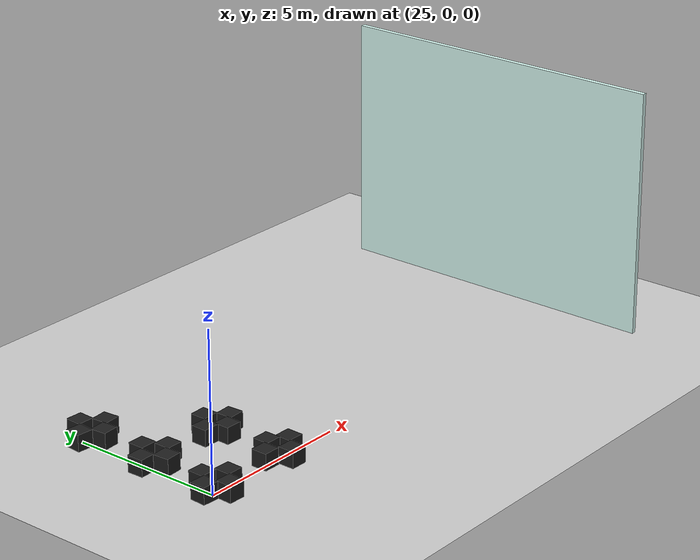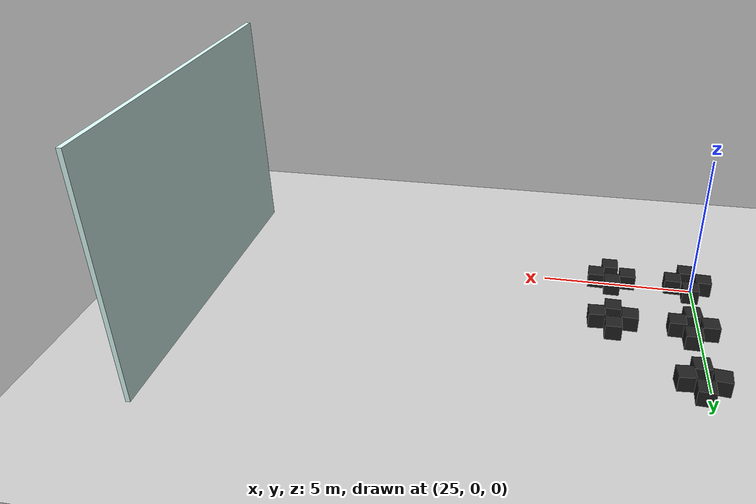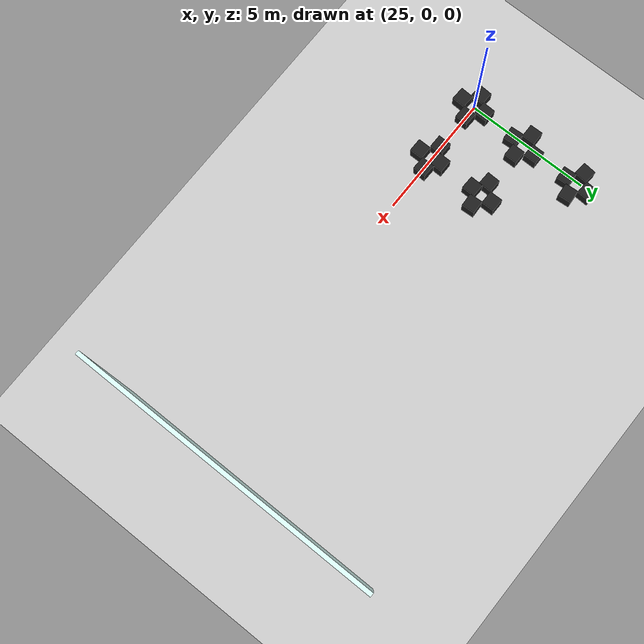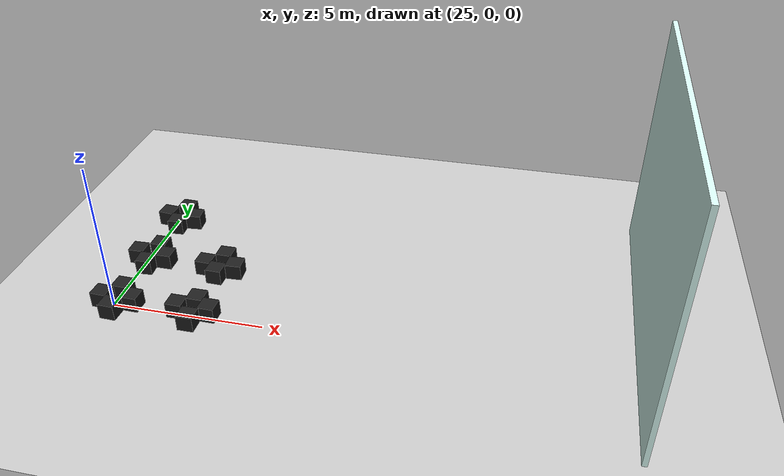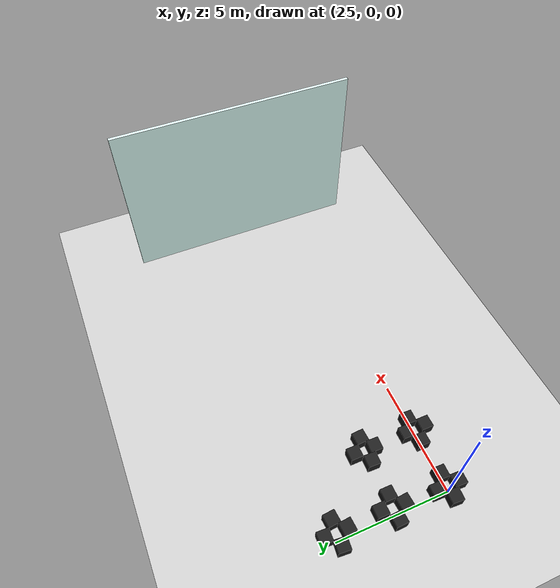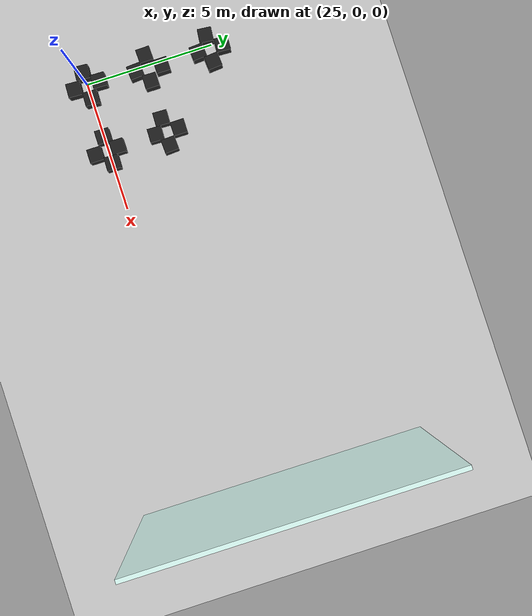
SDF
<sdf version="1.6">
 <world name="default">
  <model name="unit_box_0_clone_22_clone_15_clone_19">
   <link name="link">
    <inertial>
     <mass>1</mass>
     <inertia>
      <ixx>0.166667</ixx>
      <ixy>0</ixy>
      <ixz>0</ixz>
      <iyy>0.166667</iyy>
      <iyz>0</iyz>
      <izz>0.166667</izz>
     </inertia>
    </inertial>
    <visual name="visual">
     <geometry><box><size>0.530101 0.530101 0.530101</size></box></geometry>
     <material>
      <script><name>Gazebo/FlatBlack</name><uri>file://media/materials/scripts/gazebo.material</uri></script>
      <shader type="pixel"><normal_map>__default__</normal_map></shader>
      <ambient>0.1 0.1 0.1 1</ambient>
      <diffuse>0.1 0.1 0.1 1</diffuse>
      <specular>0.01 0.01 0.01 1</specular>
      <emissive>0 0 0 1</emissive>
     </material>
    </visual>
    <collision name="collision">
     <geometry><box><size>0.530101 0.530101 0.530101</size></box></geometry>
     <surface>
      <friction>
       <ode><mu>1</mu><mu2>1</mu2><fdir1>0 0 0</fdir1><slip1>0</slip1><slip2>0</slip2></ode>
       <torsional>
        <coefficient>1</coefficient>
        <patch_radius>0</patch_radius>
        <surface_radius>0</surface_radius>
        <use_patch_radius>1</use_patch_radius>
        <ode><slip>0</slip></ode>
       </torsional>
      </friction>
      <bounce><restitution_coefficient>0</restitution_coefficient><threshold>1e+06</threshold></bounce>
      <contact>
       <collide_without_contact>0</collide_without_contact>
       <collide_without_contact_bitmask>1</collide_without_contact_bitmask>
       <collide_bitmask>1</collide_bitmask>
       <ode>
        <soft_cfm>0</soft_cfm>
        <soft_erp>0.2</soft_erp>
        <kp>1e+13</kp>
        <kd>1</kd>
        <max_vel>0.01</max_vel>
        <min_depth>0</min_depth>
       </ode>
       <bullet>
        <split_impulse>1</split_impulse>
        <split_impulse_penetration_threshold>-0.01</split_impulse_penetration_threshold>
        <soft_cfm>0</soft_cfm>
        <soft_erp>0.2</soft_erp>
        <kp>1e+13</kp>
        <kd>1</kd>
       </bullet>
      </contact>
     </surface>
    </collision>
   </link>
   <static>0</static>
   <pose>25.1706 -0.484012 0.314108 8e-06 8e-06 -0.043517</pose>
  </model>
  <model name="unit_box_0_clone_22_clone_15_clone_20">
   <link name="link">
    <inertial>
     <mass>1</mass>
     <inertia>
      <ixx>0.166667</ixx>
      <ixy>0</ixy>
      <ixz>0</ixz>
      <iyy>0.166667</iyy>
      <iyz>0</iyz>
      <izz>0.166667</izz>
     </inertia>
    </inertial>
    <visual name="visual">
     <geometry><box><size>0.530101 0.530101 0.530101</size></box></geometry>
     <material>
      <script><name>Gazebo/FlatBlack</name><uri>file://media/materials/scripts/gazebo.material</uri></script>
      <shader type="pixel"><normal_map>__default__</normal_map></shader>
      <ambient>0.1 0.1 0.1 1</ambient>
      <diffuse>0.1 0.1 0.1 1</diffuse>
      <specular>0.01 0.01 0.01 1</specular>
      <emissive>0 0 0 1</emissive>
     </material>
    </visual>
    <collision name="collision">
     <geometry><box><size>0.530101 0.530101 0.530101</size></box></geometry>
     <surface>
      <friction>
       <ode><mu>1</mu><mu2>1</mu2><fdir1>0 0 0</fdir1><slip1>0</slip1><slip2>0</slip2></ode>
       <torsional>
        <coefficient>1</coefficient>
        <patch_radius>0</patch_radius>
        <surface_radius>0</surface_radius>
        <use_patch_radius>1</use_patch_radius>
        <ode><slip>0</slip></ode>
       </torsional>
      </friction>
      <bounce><restitution_coefficient>0</restitution_coefficient><threshold>1e+06</threshold></bounce>
      <contact>
       <collide_without_contact>0</collide_without_contact>
       <collide_without_contact_bitmask>1</collide_without_contact_bitmask>
       <collide_bitmask>1</collide_bitmask>
       <ode>
        <soft_cfm>0</soft_cfm>
        <soft_erp>0.2</soft_erp>
        <kp>1e+13</kp>
        <kd>1</kd>
        <max_vel>0.01</max_vel>
        <min_depth>0</min_depth>
       </ode>
       <bullet>
        <split_impulse>1</split_impulse>
        <split_impulse_penetration_threshold>-0.01</split_impulse_penetration_threshold>
        <soft_cfm>0</soft_cfm>
        <soft_erp>0.2</soft_erp>
        <kp>1e+13</kp>
        <kd>1</kd>
       </bullet>
      </contact>
     </surface>
    </collision>
   </link>
   <static>0</static>
   <pose>25.6728 0.028135 0.311659 6e-06 9e-06 -0.0306</pose>
  </model>
  <model name="unit_box_0_clone_22_clone_15_clone_21">
   <link name="link">
    <inertial>
     <mass>1</mass>
     <inertia>
      <ixx>0.166667</ixx>
      <ixy>0</ixy>
      <ixz>0</ixz>
      <iyy>0.166667</iyy>
      <iyz>0</iyz>
      <izz>0.166667</izz>
     </inertia>
    </inertial>
    <visual name="visual">
     <geometry><box><size>0.530101 0.530101 0.530101</size></box></geometry>
     <material>
      <script><name>Gazebo/FlatBlack</name><uri>file://media/materials/scripts/gazebo.material</uri></script>
      <shader type="pixel"><normal_map>__default__</normal_map></shader>
      <ambient>0.1 0.1 0.1 1</ambient>
      <diffuse>0.1 0.1 0.1 1</diffuse>
      <specular>0.01 0.01 0.01 1</specular>
      <emissive>0 0 0 1</emissive>
     </material>
    </visual>
    <collision name="collision">
     <geometry><box><size>0.530101 0.530101 0.530101</size></box></geometry>
     <surface>
      <friction>
       <ode><mu>1</mu><mu2>1</mu2><fdir1>0 0 0</fdir1><slip1>0</slip1><slip2>0</slip2></ode>
       <torsional>
        <coefficient>1</coefficient>
        <patch_radius>0</patch_radius>
        <surface_radius>0</surface_radius>
        <use_patch_radius>1</use_patch_radius>
        <ode><slip>0</slip></ode>
       </torsional>
      </friction>
      <bounce><restitution_coefficient>0</restitution_coefficient><threshold>1e+06</threshold></bounce>
      <contact>
       <collide_without_contact>0</collide_without_contact>
       <collide_without_contact_bitmask>1</collide_without_contact_bitmask>
       <collide_bitmask>1</collide_bitmask>
       <ode>
        <soft_cfm>0</soft_cfm>
        <soft_erp>0.2</soft_erp>
        <kp>1e+13</kp>
        <kd>1</kd>
        <max_vel>0.01</max_vel>
        <min_depth>0</min_depth>
       </ode>
       <bullet>
        <split_impulse>1</split_impulse>
        <split_impulse_penetration_threshold>-0.01</split_impulse_penetration_threshold>
        <soft_cfm>0</soft_cfm>
        <soft_erp>0.2</soft_erp>
        <kp>1e+13</kp>
        <kd>1</kd>
       </bullet>
      </contact>
     </surface>
    </collision>
   </link>
   <static>0</static>
   <pose>24.6496 -0.006204 0.314108 7e-06 9e-06 -0.061945</pose>
  </model>
  <model name="unit_box_0_clone_22_clone_15_clone_22">
   <link name="link">
    <inertial>
     <mass>1</mass>
     <inertia>
      <ixx>0.166667</ixx>
      <ixy>0</ixy>
      <ixz>0</ixz>
      <iyy>0.166667</iyy>
      <iyz>0</iyz>
      <izz>0.166667</izz>
     </inertia>
    </inertial>
    <visual name="visual">
     <geometry><box><size>0.530101 0.530101 0.530101</size></box></geometry>
     <material>
      <script><name>Gazebo/FlatBlack</name><uri>file://media/materials/scripts/gazebo.material</uri></script>
      <shader type="pixel"><normal_map>__default__</normal_map></shader>
      <ambient>0.1 0.1 0.1 1</ambient>
      <diffuse>0.1 0.1 0.1 1</diffuse>
      <specular>0.01 0.01 0.01 1</specular>
      <emissive>0 0 0 1</emissive>
     </material>
    </visual>
    <collision name="collision">
     <geometry><box><size>0.530101 0.530101 0.530101</size></box></geometry>
     <surface>
      <friction>
       <ode><mu>1</mu><mu2>1</mu2><fdir1>0 0 0</fdir1><slip1>0</slip1><slip2>0</slip2></ode>
       <torsional>
        <coefficient>1</coefficient>
        <patch_radius>0</patch_radius>
        <surface_radius>0</surface_radius>
        <use_patch_radius>1</use_patch_radius>
        <ode><slip>0</slip></ode>
       </torsional>
      </friction>
      <bounce><restitution_coefficient>0</restitution_coefficient><threshold>1e+06</threshold></bounce>
      <contact>
       <collide_without_contact>0</collide_without_contact>
       <collide_without_contact_bitmask>1</collide_without_contact_bitmask>
       <collide_bitmask>1</collide_bitmask>
       <ode>
        <soft_cfm>0</soft_cfm>
        <soft_erp>0.2</soft_erp>
        <kp>1e+13</kp>
        <kd>1</kd>
        <max_vel>0.01</max_vel>
        <min_depth>0</min_depth>
       </ode>
       <bullet>
        <split_impulse>1</split_impulse>
        <split_impulse_penetration_threshold>-0.01</split_impulse_penetration_threshold>
        <soft_cfm>0</soft_cfm>
        <soft_erp>0.2</soft_erp>
        <kp>1e+13</kp>
        <kd>1</kd>
       </bullet>
      </contact>
     </surface>
    </collision>
   </link>
   <static>0</static>
   <pose>25.1247 0.50514 0.314113 0 0 -0.02557</pose>
  </model>
  <model name="unit_box_0_clone_22_clone_15_clone_23">
   <link name="link">
    <inertial>
     <mass>1</mass>
     <inertia>
      <ixx>0.166667</ixx>
      <ixy>0</ixy>
      <ixz>0</ixz>
      <iyy>0.166667</iyy>
      <iyz>0</iyz>
      <izz>0.166667</izz>
     </inertia>
    </inertial>
    <visual name="visual">
     <geometry><box><size>0.530101 0.530101 0.530101</size></box></geometry>
     <material>
      <script><name>Gazebo/FlatBlack</name><uri>file://media/materials/scripts/gazebo.material</uri></script>
      <shader type="pixel"><normal_map>__default__</normal_map></shader>
      <ambient>0.1 0.1 0.1 1</ambient>
      <diffuse>0.1 0.1 0.1 1</diffuse>
      <specular>0.01 0.01 0.01 1</specular>
      <emissive>0 0 0 1</emissive>
     </material>
    </visual>
    <collision name="collision">
     <geometry><box><size>0.530101 0.530101 0.530101</size></box></geometry>
     <surface>
      <friction>
       <ode><mu>1</mu><mu2>1</mu2><fdir1>0 0 0</fdir1><slip1>0</slip1><slip2>0</slip2></ode>
       <torsional>
        <coefficient>1</coefficient>
        <patch_radius>0</patch_radius>
        <surface_radius>0</surface_radius>
        <use_patch_radius>1</use_patch_radius>
        <ode><slip>0</slip></ode>
       </torsional>
      </friction>
      <bounce><restitution_coefficient>0</restitution_coefficient><threshold>1e+06</threshold></bounce>
      <contact>
       <collide_without_contact>0</collide_without_contact>
       <collide_without_contact_bitmask>1</collide_without_contact_bitmask>
       <collide_bitmask>1</collide_bitmask>
       <ode>
        <soft_cfm>0</soft_cfm>
        <soft_erp>0.2</soft_erp>
        <kp>1e+13</kp>
        <kd>1</kd>
        <max_vel>0.01</max_vel>
        <min_depth>0</min_depth>
       </ode>
       <bullet>
        <split_impulse>1</split_impulse>
        <split_impulse_penetration_threshold>-0.01</split_impulse_penetration_threshold>
        <soft_cfm>0</soft_cfm>
        <soft_erp>0.2</soft_erp>
        <kp>1e+13</kp>
        <kd>1</kd>
       </bullet>
      </contact>
     </surface>
    </collision>
   </link>
   <static>0</static>
   <pose>27.724 0.421905 0.314109 -9e-06 6e-06 -0.007031</pose>
  </model>
  <model name="unit_box_0_clone_22_clone_15_clone_24">
   <link name="link">
    <inertial>
     <mass>1</mass>
     <inertia>
      <ixx>0.166667</ixx>
      <ixy>0</ixy>
      <ixz>0</ixz>
      <iyy>0.166667</iyy>
      <iyz>0</iyz>
      <izz>0.166667</izz>
     </inertia>
    </inertial>
    <visual name="visual">
     <geometry><box><size>0.530101 0.530101 0.530101</size></box></geometry>
     <material>
      <script><name>Gazebo/FlatBlack</name><uri>file://media/materials/scripts/gazebo.material</uri></script>
      <shader type="pixel"><normal_map>__default__</normal_map></shader>
      <ambient>0.1 0.1 0.1 1</ambient>
      <diffuse>0.1 0.1 0.1 1</diffuse>
      <specular>0.01 0.01 0.01 1</specular>
      <emissive>0 0 0 1</emissive>
     </material>
    </visual>
    <collision name="collision">
     <geometry><box><size>0.530101 0.530101 0.530101</size></box></geometry>
     <surface>
      <friction>
       <ode><mu>1</mu><mu2>1</mu2><fdir1>0 0 0</fdir1><slip1>0</slip1><slip2>0</slip2></ode>
       <torsional>
        <coefficient>1</coefficient>
        <patch_radius>0</patch_radius>
        <surface_radius>0</surface_radius>
        <use_patch_radius>1</use_patch_radius>
        <ode><slip>0</slip></ode>
       </torsional>
      </friction>
      <bounce><restitution_coefficient>0</restitution_coefficient><threshold>1e+06</threshold></bounce>
      <contact>
       <collide_without_contact>0</collide_without_contact>
       <collide_without_contact_bitmask>1</collide_without_contact_bitmask>
       <collide_bitmask>1</collide_bitmask>
       <ode>
        <soft_cfm>0</soft_cfm>
        <soft_erp>0.2</soft_erp>
        <kp>1e+13</kp>
        <kd>1</kd>
        <max_vel>0.01</max_vel>
        <min_depth>0</min_depth>
       </ode>
       <bullet>
        <split_impulse>1</split_impulse>
        <split_impulse_penetration_threshold>-0.01</split_impulse_penetration_threshold>
        <soft_cfm>0</soft_cfm>
        <soft_erp>0.2</soft_erp>
        <kp>1e+13</kp>
        <kd>1</kd>
       </bullet>
      </contact>
     </surface>
    </collision>
   </link>
   <static>0</static>
   <pose>28.2498 0.05298 0.314111 -1e-05 4e-06 -0.028387</pose>
  </model>
  <model name="unit_box_0_clone_22_clone_15_clone_25">
   <link name="link">
    <inertial>
     <mass>1</mass>
     <inertia>
      <ixx>0.166667</ixx>
      <ixy>0</ixy>
      <ixz>0</ixz>
      <iyy>0.166667</iyy>
      <iyz>0</iyz>
      <izz>0.166667</izz>
     </inertia>
    </inertial>
    <visual name="visual">
     <geometry><box><size>0.530101 0.530101 0.530101</size></box></geometry>
     <material>
      <script><name>Gazebo/FlatBlack</name><uri>file://media/materials/scripts/gazebo.material</uri></script>
      <shader type="pixel"><normal_map>__default__</normal_map></shader>
      <ambient>0.1 0.1 0.1 1</ambient>
      <diffuse>0.1 0.1 0.1 1</diffuse>
      <specular>0.01 0.01 0.01 1</specular>
      <emissive>0 0 0 1</emissive>
     </material>
    </visual>
    <collision name="collision">
     <geometry><box><size>0.530101 0.530101 0.530101</size></box></geometry>
     <surface>
      <friction>
       <ode><mu>1</mu><mu2>1</mu2><fdir1>0 0 0</fdir1><slip1>0</slip1><slip2>0</slip2></ode>
       <torsional>
        <coefficient>1</coefficient>
        <patch_radius>0</patch_radius>
        <surface_radius>0</surface_radius>
        <use_patch_radius>1</use_patch_radius>
        <ode><slip>0</slip></ode>
       </torsional>
      </friction>
      <bounce><restitution_coefficient>0</restitution_coefficient><threshold>1e+06</threshold></bounce>
      <contact>
       <collide_without_contact>0</collide_without_contact>
       <collide_without_contact_bitmask>1</collide_without_contact_bitmask>
       <collide_bitmask>1</collide_bitmask>
       <ode>
        <soft_cfm>0</soft_cfm>
        <soft_erp>0.2</soft_erp>
        <kp>1e+13</kp>
        <kd>1</kd>
        <max_vel>0.01</max_vel>
        <min_depth>0</min_depth>
       </ode>
       <bullet>
        <split_impulse>1</split_impulse>
        <split_impulse_penetration_threshold>-0.01</split_impulse_penetration_threshold>
        <soft_cfm>0</soft_cfm>
        <soft_erp>0.2</soft_erp>
        <kp>1e+13</kp>
        <kd>1</kd>
       </bullet>
      </contact>
     </surface>
    </collision>
   </link>
   <static>0</static>
   <pose>27.7683 -0.473695 0.314109 -6e-06 9e-06 -0.004097</pose>
  </model>
  <model name="unit_box_0_clone_22_clone_15_clone_26">
   <link name="link">
    <inertial>
     <mass>1</mass>
     <inertia>
      <ixx>0.166667</ixx>
      <ixy>0</ixy>
      <ixz>0</ixz>
      <iyy>0.166667</iyy>
      <iyz>0</iyz>
      <izz>0.166667</izz>
     </inertia>
    </inertial>
    <visual name="visual">
     <geometry><box><size>0.530101 0.530101 0.530101</size></box></geometry>
     <material>
      <script><name>Gazebo/FlatBlack</name><uri>file://media/materials/scripts/gazebo.material</uri></script>
      <shader type="pixel"><normal_map>__default__</normal_map></shader>
      <ambient>0.1 0.1 0.1 1</ambient>
      <diffuse>0.1 0.1 0.1 1</diffuse>
      <specular>0.01 0.01 0.01 1</specular>
      <emissive>0 0 0 1</emissive>
     </material>
    </visual>
    <collision name="collision">
     <geometry><box><size>0.530101 0.530101 0.530101</size></box></geometry>
     <surface>
      <friction>
       <ode><mu>1</mu><mu2>1</mu2><fdir1>0 0 0</fdir1><slip1>0</slip1><slip2>0</slip2></ode>
       <torsional>
        <coefficient>1</coefficient>
        <patch_radius>0</patch_radius>
        <surface_radius>0</surface_radius>
        <use_patch_radius>1</use_patch_radius>
        <ode><slip>0</slip></ode>
       </torsional>
      </friction>
      <bounce><restitution_coefficient>0</restitution_coefficient><threshold>1e+06</threshold></bounce>
      <contact>
       <collide_without_contact>0</collide_without_contact>
       <collide_without_contact_bitmask>1</collide_without_contact_bitmask>
       <collide_bitmask>1</collide_bitmask>
       <ode>
        <soft_cfm>0</soft_cfm>
        <soft_erp>0.2</soft_erp>
        <kp>1e+13</kp>
        <kd>1</kd>
        <max_vel>0.01</max_vel>
        <min_depth>0</min_depth>
       </ode>
       <bullet>
        <split_impulse>1</split_impulse>
        <split_impulse_penetration_threshold>-0.01</split_impulse_penetration_threshold>
        <soft_cfm>0</soft_cfm>
        <soft_erp>0.2</soft_erp>
        <kp>1e+13</kp>
        <kd>1</kd>
       </bullet>
      </contact>
     </surface>
    </collision>
   </link>
   <static>0</static>
   <pose>27.1889 0.017821 0.314108 7e-06 -1.1e-05 -0.010988</pose>
  </model>
  <model name="unit_box_0_clone_22_clone_15_clone_27">
   <link name="link">
    <inertial>
     <mass>1</mass>
     <inertia>
      <ixx>0.166667</ixx>
      <ixy>0</ixy>
      <ixz>0</ixz>
      <iyy>0.166667</iyy>
      <iyz>0</iyz>
      <izz>0.166667</izz>
     </inertia>
    </inertial>
    <visual name="visual">
     <geometry><box><size>0.530101 0.530101 0.530101</size></box></geometry>
     <material>
      <script><name>Gazebo/FlatBlack</name><uri>file://media/materials/scripts/gazebo.material</uri></script>
      <shader type="pixel"><normal_map>__default__</normal_map></shader>
      <ambient>0.1 0.1 0.1 1</ambient>
      <diffuse>0.1 0.1 0.1 1</diffuse>
      <specular>0.01 0.01 0.01 1</specular>
      <emissive>0 0 0 1</emissive>
     </material>
    </visual>
    <collision name="collision">
     <geometry><box><size>0.530101 0.530101 0.530101</size></box></geometry>
     <surface>
      <friction>
       <ode><mu>1</mu><mu2>1</mu2><fdir1>0 0 0</fdir1><slip1>0</slip1><slip2>0</slip2></ode>
       <torsional>
        <coefficient>1</coefficient>
        <patch_radius>0</patch_radius>
        <surface_radius>0</surface_radius>
        <use_patch_radius>1</use_patch_radius>
        <ode><slip>0</slip></ode>
       </torsional>
      </friction>
      <bounce><restitution_coefficient>0</restitution_coefficient><threshold>1e+06</threshold></bounce>
      <contact>
       <collide_without_contact>0</collide_without_contact>
       <collide_without_contact_bitmask>1</collide_without_contact_bitmask>
       <collide_bitmask>1</collide_bitmask>
       <ode>
        <soft_cfm>0</soft_cfm>
        <soft_erp>0.2</soft_erp>
        <kp>1e+13</kp>
        <kd>1</kd>
        <max_vel>0.01</max_vel>
        <min_depth>0</min_depth>
       </ode>
       <bullet>
        <split_impulse>1</split_impulse>
        <split_impulse_penetration_threshold>-0.01</split_impulse_penetration_threshold>
        <soft_cfm>0</soft_cfm>
        <soft_erp>0.2</soft_erp>
        <kp>1e+13</kp>
        <kd>1</kd>
       </bullet>
      </contact>
     </surface>
    </collision>
   </link>
   <static>0</static>
   <pose>25.2541 4.39549 0.314108 8e-06 -8e-06 0.062258</pose>
  </model>
  <model name="unit_box_0_clone_22_clone_15_clone_28">
   <link name="link">
    <inertial>
     <mass>1</mass>
     <inertia>
      <ixx>0.166667</ixx>
      <ixy>0</ixy>
      <ixz>0</ixz>
      <iyy>0.166667</iyy>
      <iyz>0</iyz>
      <izz>0.166667</izz>
     </inertia>
    </inertial>
    <visual name="visual">
     <geometry><box><size>0.530101 0.530101 0.530101</size></box></geometry>
     <material>
      <script><name>Gazebo/FlatBlack</name><uri>file://media/materials/scripts/gazebo.material</uri></script>
      <shader type="pixel"><normal_map>__default__</normal_map></shader>
      <ambient>0.1 0.1 0.1 1</ambient>
      <diffuse>0.1 0.1 0.1 1</diffuse>
      <specular>0.01 0.01 0.01 1</specular>
      <emissive>0 0 0 1</emissive>
     </material>
    </visual>
    <collision name="collision">
     <geometry><box><size>0.530101 0.530101 0.530101</size></box></geometry>
     <surface>
      <friction>
       <ode><mu>1</mu><mu2>1</mu2><fdir1>0 0 0</fdir1><slip1>0</slip1><slip2>0</slip2></ode>
       <torsional>
        <coefficient>1</coefficient>
        <patch_radius>0</patch_radius>
        <surface_radius>0</surface_radius>
        <use_patch_radius>1</use_patch_radius>
        <ode><slip>0</slip></ode>
       </torsional>
      </friction>
      <bounce><restitution_coefficient>0</restitution_coefficient><threshold>1e+06</threshold></bounce>
      <contact>
       <collide_without_contact>0</collide_without_contact>
       <collide_without_contact_bitmask>1</collide_without_contact_bitmask>
       <collide_bitmask>1</collide_bitmask>
       <ode>
        <soft_cfm>0</soft_cfm>
        <soft_erp>0.2</soft_erp>
        <kp>1e+13</kp>
        <kd>1</kd>
        <max_vel>0.01</max_vel>
        <min_depth>0</min_depth>
       </ode>
       <bullet>
        <split_impulse>1</split_impulse>
        <split_impulse_penetration_threshold>-0.01</split_impulse_penetration_threshold>
        <soft_cfm>0</soft_cfm>
        <soft_erp>0.2</soft_erp>
        <kp>1e+13</kp>
        <kd>1</kd>
       </bullet>
      </contact>
     </surface>
    </collision>
   </link>
   <static>0</static>
   <pose>25.7555 4.83497 0.314108 -1.1e-05 7e-06 0.078792</pose>
  </model>
  <model name="unit_box_0_clone_22_clone_15_clone_29">
   <link name="link">
    <inertial>
     <mass>1</mass>
     <inertia>
      <ixx>0.166667</ixx>
      <ixy>0</ixy>
      <ixz>0</ixz>
      <iyy>0.166667</iyy>
      <iyz>0</iyz>
      <izz>0.166667</izz>
     </inertia>
    </inertial>
    <visual name="visual">
     <geometry><box><size>0.530101 0.530101 0.530101</size></box></geometry>
     <material>
      <script><name>Gazebo/FlatBlack</name><uri>file://media/materials/scripts/gazebo.material</uri></script>
      <shader type="pixel"><normal_map>__default__</normal_map></shader>
      <ambient>0.1 0.1 0.1 1</ambient>
      <diffuse>0.1 0.1 0.1 1</diffuse>
      <specular>0.01 0.01 0.01 1</specular>
      <emissive>0 0 0 1</emissive>
     </material>
    </visual>
    <collision name="collision">
     <geometry><box><size>0.530101 0.530101 0.530101</size></box></geometry>
     <surface>
      <friction>
       <ode><mu>1</mu><mu2>1</mu2><fdir1>0 0 0</fdir1><slip1>0</slip1><slip2>0</slip2></ode>
       <torsional>
        <coefficient>1</coefficient>
        <patch_radius>0</patch_radius>
        <surface_radius>0</surface_radius>
        <use_patch_radius>1</use_patch_radius>
        <ode><slip>0</slip></ode>
       </torsional>
      </friction>
      <bounce><restitution_coefficient>0</restitution_coefficient><threshold>1e+06</threshold></bounce>
      <contact>
       <collide_without_contact>0</collide_without_contact>
       <collide_without_contact_bitmask>1</collide_without_contact_bitmask>
       <collide_bitmask>1</collide_bitmask>
       <ode>
        <soft_cfm>0</soft_cfm>
        <soft_erp>0.2</soft_erp>
        <kp>1e+13</kp>
        <kd>1</kd>
        <max_vel>0.01</max_vel>
        <min_depth>0</min_depth>
       </ode>
       <bullet>
        <split_impulse>1</split_impulse>
        <split_impulse_penetration_threshold>-0.01</split_impulse_penetration_threshold>
        <soft_cfm>0</soft_cfm>
        <soft_erp>0.2</soft_erp>
        <kp>1e+13</kp>
        <kd>1</kd>
       </bullet>
      </contact>
     </surface>
    </collision>
   </link>
   <static>0</static>
   <pose>24.7276 4.85817 0.314114 -5e-06 -0 -0.096815</pose>
  </model>
  <model name="unit_box_0_clone_22_clone_15_clone_30">
   <link name="link">
    <inertial>
     <mass>1</mass>
     <inertia>
      <ixx>0.166667</ixx>
      <ixy>0</ixy>
      <ixz>0</ixz>
      <iyy>0.166667</iyy>
      <iyz>0</iyz>
      <izz>0.166667</izz>
     </inertia>
    </inertial>
    <visual name="visual">
     <geometry><box><size>0.530101 0.530101 0.530101</size></box></geometry>
     <material>
      <script><name>Gazebo/FlatBlack</name><uri>file://media/materials/scripts/gazebo.material</uri></script>
      <shader type="pixel"><normal_map>__default__</normal_map></shader>
      <ambient>0.1 0.1 0.1 1</ambient>
      <diffuse>0.1 0.1 0.1 1</diffuse>
      <specular>0.01 0.01 0.01 1</specular>
      <emissive>0 0 0 1</emissive>
     </material>
    </visual>
    <collision name="collision">
     <geometry><box><size>0.530101 0.530101 0.530101</size></box></geometry>
     <surface>
      <friction>
       <ode><mu>1</mu><mu2>1</mu2><fdir1>0 0 0</fdir1><slip1>0</slip1><slip2>0</slip2></ode>
       <torsional>
        <coefficient>1</coefficient>
        <patch_radius>0</patch_radius>
        <surface_radius>0</surface_radius>
        <use_patch_radius>1</use_patch_radius>
        <ode><slip>0</slip></ode>
       </torsional>
      </friction>
      <bounce><restitution_coefficient>0</restitution_coefficient><threshold>1e+06</threshold></bounce>
      <contact>
       <collide_without_contact>0</collide_without_contact>
       <collide_without_contact_bitmask>1</collide_without_contact_bitmask>
       <collide_bitmask>1</collide_bitmask>
       <ode>
        <soft_cfm>0</soft_cfm>
        <soft_erp>0.2</soft_erp>
        <kp>1e+13</kp>
        <kd>1</kd>
        <max_vel>0.01</max_vel>
        <min_depth>0</min_depth>
       </ode>
       <bullet>
        <split_impulse>1</split_impulse>
        <split_impulse_penetration_threshold>-0.01</split_impulse_penetration_threshold>
        <soft_cfm>0</soft_cfm>
        <soft_erp>0.2</soft_erp>
        <kp>1e+13</kp>
        <kd>1</kd>
       </bullet>
      </contact>
     </surface>
    </collision>
   </link>
   <static>0</static>
   <pose>25.2508 5.35833 0.314107 -7e-06 -9e-06 -0.046904</pose>
  </model>
  <model name="unit_box_0_clone_22_clone_15_clone_31">
   <link name="link">
    <inertial>
     <mass>1</mass>
     <inertia>
      <ixx>0.166667</ixx>
      <ixy>0</ixy>
      <ixz>0</ixz>
      <iyy>0.166667</iyy>
      <iyz>0</iyz>
      <izz>0.166667</izz>
     </inertia>
    </inertial>
    <visual name="visual">
     <geometry><box><size>0.530101 0.530101 0.530101</size></box></geometry>
     <material>
      <script><name>Gazebo/FlatBlack</name><uri>file://media/materials/scripts/gazebo.material</uri></script>
      <shader type="pixel"><normal_map>__default__</normal_map></shader>
      <ambient>0.1 0.1 0.1 1</ambient>
      <diffuse>0.1 0.1 0.1 1</diffuse>
      <specular>0.01 0.01 0.01 1</specular>
      <emissive>0 0 0 1</emissive>
     </material>
    </visual>
    <collision name="collision">
     <geometry><box><size>0.530101 0.530101 0.530101</size></box></geometry>
     <surface>
      <friction>
       <ode><mu>1</mu><mu2>1</mu2><fdir1>0 0 0</fdir1><slip1>0</slip1><slip2>0</slip2></ode>
       <torsional>
        <coefficient>1</coefficient>
        <patch_radius>0</patch_radius>
        <surface_radius>0</surface_radius>
        <use_patch_radius>1</use_patch_radius>
        <ode><slip>0</slip></ode>
       </torsional>
      </friction>
      <bounce><restitution_coefficient>0</restitution_coefficient><threshold>1e+06</threshold></bounce>
      <contact>
       <collide_without_contact>0</collide_without_contact>
       <collide_without_contact_bitmask>1</collide_without_contact_bitmask>
       <collide_bitmask>1</collide_bitmask>
       <ode>
        <soft_cfm>0</soft_cfm>
        <soft_erp>0.2</soft_erp>
        <kp>1e+13</kp>
        <kd>1</kd>
        <max_vel>0.01</max_vel>
        <min_depth>0</min_depth>
       </ode>
       <bullet>
        <split_impulse>1</split_impulse>
        <split_impulse_penetration_threshold>-0.01</split_impulse_penetration_threshold>
        <soft_cfm>0</soft_cfm>
        <soft_erp>0.2</soft_erp>
        <kp>1e+13</kp>
        <kd>1</kd>
       </bullet>
      </contact>
     </surface>
    </collision>
   </link>
   <static>0</static>
   <pose>24.7313 2.44012 0.314108 8e-06 8e-06 0.019334</pose>
  </model>
  <model name="unit_box_0_clone_22_clone_15_clone_32">
   <link name="link">
    <inertial>
     <mass>1</mass>
     <inertia>
      <ixx>0.166667</ixx>
      <ixy>0</ixy>
      <ixz>0</ixz>
      <iyy>0.166667</iyy>
      <iyz>0</iyz>
      <izz>0.166667</izz>
     </inertia>
    </inertial>
    <visual name="visual">
     <geometry><box><size>0.530101 0.530101 0.530101</size></box></geometry>
     <material>
      <script><name>Gazebo/FlatBlack</name><uri>file://media/materials/scripts/gazebo.material</uri></script>
      <shader type="pixel"><normal_map>__default__</normal_map></shader>
      <ambient>0.1 0.1 0.1 1</ambient>
      <diffuse>0.1 0.1 0.1 1</diffuse>
      <specular>0.01 0.01 0.01 1</specular>
      <emissive>0 0 0 1</emissive>
     </material>
    </visual>
    <collision name="collision">
     <geometry><box><size>0.530101 0.530101 0.530101</size></box></geometry>
     <surface>
      <friction>
       <ode><mu>1</mu><mu2>1</mu2><fdir1>0 0 0</fdir1><slip1>0</slip1><slip2>0</slip2></ode>
       <torsional>
        <coefficient>1</coefficient>
        <patch_radius>0</patch_radius>
        <surface_radius>0</surface_radius>
        <use_patch_radius>1</use_patch_radius>
        <ode><slip>0</slip></ode>
       </torsional>
      </friction>
      <bounce><restitution_coefficient>0</restitution_coefficient><threshold>1e+06</threshold></bounce>
      <contact>
       <collide_without_contact>0</collide_without_contact>
       <collide_without_contact_bitmask>1</collide_without_contact_bitmask>
       <collide_bitmask>1</collide_bitmask>
       <ode>
        <soft_cfm>0</soft_cfm>
        <soft_erp>0.2</soft_erp>
        <kp>1e+13</kp>
        <kd>1</kd>
        <max_vel>0.01</max_vel>
        <min_depth>0</min_depth>
       </ode>
       <bullet>
        <split_impulse>1</split_impulse>
        <split_impulse_penetration_threshold>-0.01</split_impulse_penetration_threshold>
        <soft_cfm>0</soft_cfm>
        <soft_erp>0.2</soft_erp>
        <kp>1e+13</kp>
        <kd>1</kd>
       </bullet>
      </contact>
     </surface>
    </collision>
   </link>
   <static>0</static>
   <pose>25.7429 2.36631 0.314109 -6e-06 9e-06 -0.000483</pose>
  </model>
  <model name="unit_box_0_clone_22_clone_15_clone_33">
   <link name="link">
    <inertial>
     <mass>1</mass>
     <inertia>
      <ixx>0.166667</ixx>
      <ixy>0</ixy>
      <ixz>0</ixz>
      <iyy>0.166667</iyy>
      <iyz>0</iyz>
      <izz>0.166667</izz>
     </inertia>
    </inertial>
    <visual name="visual">
     <geometry><box><size>0.530101 0.530101 0.530101</size></box></geometry>
     <material>
      <script><name>Gazebo/FlatBlack</name><uri>file://media/materials/scripts/gazebo.material</uri></script>
      <shader type="pixel"><normal_map>__default__</normal_map></shader>
      <ambient>0.1 0.1 0.1 1</ambient>
      <diffuse>0.1 0.1 0.1 1</diffuse>
      <specular>0.01 0.01 0.01 1</specular>
      <emissive>0 0 0 1</emissive>
     </material>
    </visual>
    <collision name="collision">
     <geometry><box><size>0.530101 0.530101 0.530101</size></box></geometry>
     <surface>
      <friction>
       <ode><mu>1</mu><mu2>1</mu2><fdir1>0 0 0</fdir1><slip1>0</slip1><slip2>0</slip2></ode>
       <torsional>
        <coefficient>1</coefficient>
        <patch_radius>0</patch_radius>
        <surface_radius>0</surface_radius>
        <use_patch_radius>1</use_patch_radius>
        <ode><slip>0</slip></ode>
       </torsional>
      </friction>
      <bounce><restitution_coefficient>0</restitution_coefficient><threshold>1e+06</threshold></bounce>
      <contact>
       <collide_without_contact>0</collide_without_contact>
       <collide_without_contact_bitmask>1</collide_without_contact_bitmask>
       <collide_bitmask>1</collide_bitmask>
       <ode>
        <soft_cfm>0</soft_cfm>
        <soft_erp>0.2</soft_erp>
        <kp>1e+13</kp>
        <kd>1</kd>
        <max_vel>0.01</max_vel>
        <min_depth>0</min_depth>
       </ode>
       <bullet>
        <split_impulse>1</split_impulse>
        <split_impulse_penetration_threshold>-0.01</split_impulse_penetration_threshold>
        <soft_cfm>0</soft_cfm>
        <soft_erp>0.2</soft_erp>
        <kp>1e+13</kp>
        <kd>1</kd>
       </bullet>
      </contact>
     </surface>
    </collision>
   </link>
   <static>0</static>
   <pose>25.3032 2.94292 0.314108 -8e-06 8e-06 5.4e-05</pose>
  </model>
  <model name="unit_box_0_clone_22_clone_15_clone_34">
   <link name="link">
    <inertial>
     <mass>1</mass>
     <inertia>
      <ixx>0.166667</ixx>
      <ixy>0</ixy>
      <ixz>0</ixz>
      <iyy>0.166667</iyy>
      <iyz>0</iyz>
      <izz>0.166667</izz>
     </inertia>
    </inertial>
    <visual name="visual">
     <geometry><box><size>0.530101 0.530101 0.530101</size></box></geometry>
     <material>
      <script><name>Gazebo/FlatBlack</name><uri>file://media/materials/scripts/gazebo.material</uri></script>
      <shader type="pixel"><normal_map>__default__</normal_map></shader>
      <ambient>0.1 0.1 0.1 1</ambient>
      <diffuse>0.1 0.1 0.1 1</diffuse>
      <specular>0.01 0.01 0.01 1</specular>
      <emissive>0 0 0 1</emissive>
     </material>
    </visual>
    <collision name="collision">
     <geometry><box><size>0.530101 0.530101 0.530101</size></box></geometry>
     <surface>
      <friction>
       <ode><mu>1</mu><mu2>1</mu2><fdir1>0 0 0</fdir1><slip1>0</slip1><slip2>0</slip2></ode>
       <torsional>
        <coefficient>1</coefficient>
        <patch_radius>0</patch_radius>
        <surface_radius>0</surface_radius>
        <use_patch_radius>1</use_patch_radius>
        <ode><slip>0</slip></ode>
       </torsional>
      </friction>
      <bounce><restitution_coefficient>0</restitution_coefficient><threshold>1e+06</threshold></bounce>
      <contact>
       <collide_without_contact>0</collide_without_contact>
       <collide_without_contact_bitmask>1</collide_without_contact_bitmask>
       <collide_bitmask>1</collide_bitmask>
       <ode>
        <soft_cfm>0</soft_cfm>
        <soft_erp>0.2</soft_erp>
        <kp>1e+13</kp>
        <kd>1</kd>
        <max_vel>0.01</max_vel>
        <min_depth>0</min_depth>
       </ode>
       <bullet>
        <split_impulse>1</split_impulse>
        <split_impulse_penetration_threshold>-0.01</split_impulse_penetration_threshold>
        <soft_cfm>0</soft_cfm>
        <soft_erp>0.2</soft_erp>
        <kp>1e+13</kp>
        <kd>1</kd>
       </bullet>
      </contact>
     </surface>
    </collision>
   </link>
   <static>0</static>
   <pose>25.2205 1.92599 0.314108 -7e-06 -8e-06 0.061333</pose>
  </model>
  <model name="unit_box_0_clone_22_clone_15_clone_35">
   <link name="link">
    <inertial>
     <mass>1</mass>
     <inertia>
      <ixx>0.166667</ixx>
      <ixy>0</ixy>
      <ixz>0</ixz>
      <iyy>0.166667</iyy>
      <iyz>0</iyz>
      <izz>0.166667</izz>
     </inertia>
    </inertial>
    <visual name="visual">
     <geometry><box><size>0.530101 0.530101 0.530101</size></box></geometry>
     <material>
      <script><name>Gazebo/FlatBlack</name><uri>file://media/materials/scripts/gazebo.material</uri></script>
      <shader type="pixel"><normal_map>__default__</normal_map></shader>
      <ambient>0.1 0.1 0.1 1</ambient>
      <diffuse>0.1 0.1 0.1 1</diffuse>
      <specular>0.01 0.01 0.01 1</specular>
      <emissive>0 0 0 1</emissive>
     </material>
    </visual>
    <collision name="collision">
     <geometry><box><size>0.530101 0.530101 0.530101</size></box></geometry>
     <surface>
      <friction>
       <ode><mu>1</mu><mu2>1</mu2><fdir1>0 0 0</fdir1><slip1>0</slip1><slip2>0</slip2></ode>
       <torsional>
        <coefficient>1</coefficient>
        <patch_radius>0</patch_radius>
        <surface_radius>0</surface_radius>
        <use_patch_radius>1</use_patch_radius>
        <ode><slip>0</slip></ode>
       </torsional>
      </friction>
      <bounce><restitution_coefficient>0</restitution_coefficient><threshold>1e+06</threshold></bounce>
      <contact>
       <collide_without_contact>0</collide_without_contact>
       <collide_without_contact_bitmask>1</collide_without_contact_bitmask>
       <collide_bitmask>1</collide_bitmask>
       <ode>
        <soft_cfm>0</soft_cfm>
        <soft_erp>0.2</soft_erp>
        <kp>1e+13</kp>
        <kd>1</kd>
        <max_vel>0.01</max_vel>
        <min_depth>0</min_depth>
       </ode>
       <bullet>
        <split_impulse>1</split_impulse>
        <split_impulse_penetration_threshold>-0.01</split_impulse_penetration_threshold>
        <soft_cfm>0</soft_cfm>
        <soft_erp>0.2</soft_erp>
        <kp>1e+13</kp>
        <kd>1</kd>
       </bullet>
      </contact>
     </surface>
    </collision>
   </link>
   <static>0</static>
   <pose>27.731 1.92425 0.314107 -8e-06 -8e-06 -0.030337</pose>
  </model>
  <model name="unit_box_0_clone_22_clone_15_clone_36">
   <link name="link">
    <inertial>
     <mass>1</mass>
     <inertia>
      <ixx>0.166667</ixx>
      <ixy>0</ixy>
      <ixz>0</ixz>
      <iyy>0.166667</iyy>
      <iyz>0</iyz>
      <izz>0.166667</izz>
     </inertia>
    </inertial>
    <visual name="visual">
     <geometry><box><size>0.530101 0.530101 0.530101</size></box></geometry>
     <material>
      <script><name>Gazebo/FlatBlack</name><uri>file://media/materials/scripts/gazebo.material</uri></script>
      <shader type="pixel"><normal_map>__default__</normal_map></shader>
      <ambient>0.1 0.1 0.1 1</ambient>
      <diffuse>0.1 0.1 0.1 1</diffuse>
      <specular>0.01 0.01 0.01 1</specular>
      <emissive>0 0 0 1</emissive>
     </material>
    </visual>
    <collision name="collision">
     <geometry><box><size>0.530101 0.530101 0.530101</size></box></geometry>
     <surface>
      <friction>
       <ode><mu>1</mu><mu2>1</mu2><fdir1>0 0 0</fdir1><slip1>0</slip1><slip2>0</slip2></ode>
       <torsional>
        <coefficient>1</coefficient>
        <patch_radius>0</patch_radius>
        <surface_radius>0</surface_radius>
        <use_patch_radius>1</use_patch_radius>
        <ode><slip>0</slip></ode>
       </torsional>
      </friction>
      <bounce><restitution_coefficient>0</restitution_coefficient><threshold>1e+06</threshold></bounce>
      <contact>
       <collide_without_contact>0</collide_without_contact>
       <collide_without_contact_bitmask>1</collide_without_contact_bitmask>
       <collide_bitmask>1</collide_bitmask>
       <ode>
        <soft_cfm>0</soft_cfm>
        <soft_erp>0.2</soft_erp>
        <kp>1e+13</kp>
        <kd>1</kd>
        <max_vel>0.01</max_vel>
        <min_depth>0</min_depth>
       </ode>
       <bullet>
        <split_impulse>1</split_impulse>
        <split_impulse_penetration_threshold>-0.01</split_impulse_penetration_threshold>
        <soft_cfm>0</soft_cfm>
        <soft_erp>0.2</soft_erp>
        <kp>1e+13</kp>
        <kd>1</kd>
       </bullet>
      </contact>
     </surface>
    </collision>
   </link>
   <static>0</static>
   <pose>28.2634 2.31227 0.314108 -7e-06 -1e-05 0.050432</pose>
  </model>
  <model name="unit_box_0_clone_22_clone_15_clone_37">
   <link name="link">
    <inertial>
     <mass>1</mass>
     <inertia>
      <ixx>0.166667</ixx>
      <ixy>0</ixy>
      <ixz>0</ixz>
      <iyy>0.166667</iyy>
      <iyz>0</iyz>
      <izz>0.166667</izz>
     </inertia>
    </inertial>
    <visual name="visual">
     <geometry><box><size>0.530101 0.530101 0.530101</size></box></geometry>
     <material>
      <script><name>Gazebo/FlatBlack</name><uri>file://media/materials/scripts/gazebo.material</uri></script>
      <shader type="pixel"><normal_map>__default__</normal_map></shader>
      <ambient>0.1 0.1 0.1 1</ambient>
      <diffuse>0.1 0.1 0.1 1</diffuse>
      <specular>0.01 0.01 0.01 1</specular>
      <emissive>0 0 0 1</emissive>
     </material>
    </visual>
    <collision name="collision">
     <geometry><box><size>0.530101 0.530101 0.530101</size></box></geometry>
     <surface>
      <friction>
       <ode><mu>1</mu><mu2>1</mu2><fdir1>0 0 0</fdir1><slip1>0</slip1><slip2>0</slip2></ode>
       <torsional>
        <coefficient>1</coefficient>
        <patch_radius>0</patch_radius>
        <surface_radius>0</surface_radius>
        <use_patch_radius>1</use_patch_radius>
        <ode><slip>0</slip></ode>
       </torsional>
      </friction>
      <bounce><restitution_coefficient>0</restitution_coefficient><threshold>1e+06</threshold></bounce>
      <contact>
       <collide_without_contact>0</collide_without_contact>
       <collide_without_contact_bitmask>1</collide_without_contact_bitmask>
       <collide_bitmask>1</collide_bitmask>
       <ode>
        <soft_cfm>0</soft_cfm>
        <soft_erp>0.2</soft_erp>
        <kp>1e+13</kp>
        <kd>1</kd>
        <max_vel>0.01</max_vel>
        <min_depth>0</min_depth>
       </ode>
       <bullet>
        <split_impulse>1</split_impulse>
        <split_impulse_penetration_threshold>-0.01</split_impulse_penetration_threshold>
        <soft_cfm>0</soft_cfm>
        <soft_erp>0.2</soft_erp>
        <kp>1e+13</kp>
        <kd>1</kd>
       </bullet>
      </contact>
     </surface>
    </collision>
   </link>
   <static>0</static>
   <pose>27.7451 2.83349 0.314109 -6e-06 9e-06 -0.000985</pose>
  </model>
  <model name="unit_box_0_clone_22_clone_15_clone_38">
   <link name="link">
    <inertial>
     <mass>1</mass>
     <inertia>
      <ixx>0.166667</ixx>
      <ixy>0</ixy>
      <ixz>0</ixz>
      <iyy>0.166667</iyy>
      <iyz>0</iyz>
      <izz>0.166667</izz>
     </inertia>
    </inertial>
    <visual name="visual">
     <geometry><box><size>0.530101 0.530101 0.530101</size></box></geometry>
     <material>
      <script><name>Gazebo/FlatBlack</name><uri>file://media/materials/scripts/gazebo.material</uri></script>
      <shader type="pixel"><normal_map>__default__</normal_map></shader>
      <ambient>0.1 0.1 0.1 1</ambient>
      <diffuse>0.1 0.1 0.1 1</diffuse>
      <specular>0.01 0.01 0.01 1</specular>
      <emissive>0 0 0 1</emissive>
     </material>
    </visual>
    <collision name="collision">
     <geometry><box><size>0.530101 0.530101 0.530101</size></box></geometry>
     <surface>
      <friction>
       <ode><mu>1</mu><mu2>1</mu2><fdir1>0 0 0</fdir1><slip1>0</slip1><slip2>0</slip2></ode>
       <torsional>
        <coefficient>1</coefficient>
        <patch_radius>0</patch_radius>
        <surface_radius>0</surface_radius>
        <use_patch_radius>1</use_patch_radius>
        <ode><slip>0</slip></ode>
       </torsional>
      </friction>
      <bounce><restitution_coefficient>0</restitution_coefficient><threshold>1e+06</threshold></bounce>
      <contact>
       <collide_without_contact>0</collide_without_contact>
       <collide_without_contact_bitmask>1</collide_without_contact_bitmask>
       <collide_bitmask>1</collide_bitmask>
       <ode>
        <soft_cfm>0</soft_cfm>
        <soft_erp>0.2</soft_erp>
        <kp>1e+13</kp>
        <kd>1</kd>
        <max_vel>0.01</max_vel>
        <min_depth>0</min_depth>
       </ode>
       <bullet>
        <split_impulse>1</split_impulse>
        <split_impulse_penetration_threshold>-0.01</split_impulse_penetration_threshold>
        <soft_cfm>0</soft_cfm>
        <soft_erp>0.2</soft_erp>
        <kp>1e+13</kp>
        <kd>1</kd>
       </bullet>
      </contact>
     </surface>
    </collision>
   </link>
   <static>0</static>
   <pose>27.2108 2.308 0.314107 -7e-06 -9e-06 -0.034168</pose>
  </model>
  <model name="world_frame">
   <link name="Wall_211">
    <pose>23.7999 0 -0.100255 0 -0 1.56702</pose>
    <visual name="Wall_211_Visual">
     <pose>0 0 4 0 -0 0</pose>
     <geometry><box><size>11 0.15 8</size></box></geometry>
     <material>
      <script><uri>file://media/materials/scripts/gazebo.material</uri><name>Gazebo/Grey</name></script>
      <ambient>0.866667 1 0.972549 1</ambient>
      <shader type="pixel"/>
      <diffuse>0.7 0.7 0.7 1</diffuse>
      <specular>0.01 0.01 0.01 1</specular>
      <emissive>0 0 0 1</emissive>
     </material>
     <meta><layer>0</layer></meta>
    </visual>
    <collision name="Wall_211_Collision">
     <pose>0 0 4 0 -0 0</pose>
     <geometry><box><size>11 0.15 8</size></box></geometry>
     <surface>
      <friction>
       <ode><mu>1</mu><mu2>1</mu2><fdir1>0 0 0</fdir1><slip1>0</slip1><slip2>0</slip2></ode>
       <torsional>
        <coefficient>1</coefficient>
        <patch_radius>0</patch_radius>
        <surface_radius>0</surface_radius>
        <use_patch_radius>1</use_patch_radius>
        <ode><slip>0</slip></ode>
       </torsional>
      </friction>
      <bounce><restitution_coefficient>0</restitution_coefficient><threshold>1e+06</threshold></bounce>
      <contact>
       <collide_without_contact>0</collide_without_contact>
       <collide_without_contact_bitmask>1</collide_without_contact_bitmask>
       <collide_bitmask>1</collide_bitmask>
       <ode>
        <soft_cfm>0</soft_cfm>
        <soft_erp>0.2</soft_erp>
        <kp>1e+13</kp>
        <kd>1</kd>
        <max_vel>0.01</max_vel>
        <min_depth>0</min_depth>
       </ode>
       <bullet>
        <split_impulse>1</split_impulse>
        <split_impulse_penetration_threshold>-0.01</split_impulse_penetration_threshold>
        <soft_cfm>0</soft_cfm>
        <soft_erp>0.2</soft_erp>
        <kp>1e+13</kp>
        <kd>1</kd>
       </bullet>
      </contact>
     </surface>
    </collision>
   </link>
   <static>1</static>
   <pose>17.567 2.53985 0 0 -0 0</pose>
  </model>
  <model name="ground_plane">
   <static>1</static>
   <link name="link">
    <collision name="collision">
     <geometry><plane><normal>0 0 1</normal><size>100 100</size></plane></geometry>
     <surface><friction><ode><mu>100</mu><mu2>50</mu2></ode></friction></surface>
    </collision>
    <visual name="visual">
     <cast_shadows>0</cast_shadows>
     <geometry><plane><normal>0 0 1</normal><size>100 100</size></plane></geometry>
     <material>
      <script><uri>file://media/materials/scripts/gazebo.material</uri><name>Gazebo/Grey</name></script>
     </material>
    </visual>
   </link>
   <pose>0.761598 -6.88477 0 0 -0 0</pose>
  </model>
 </world>
</sdf>
